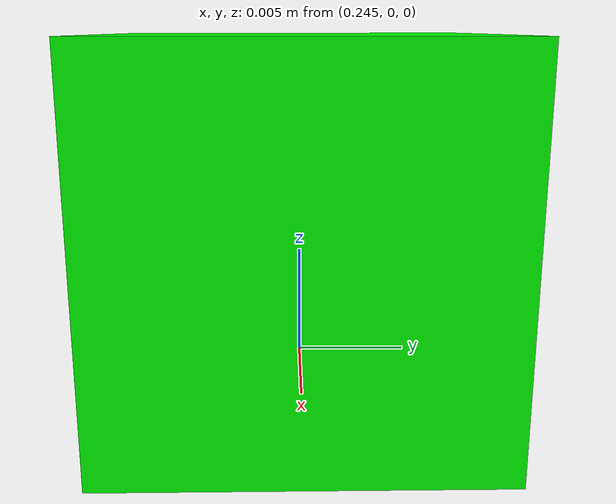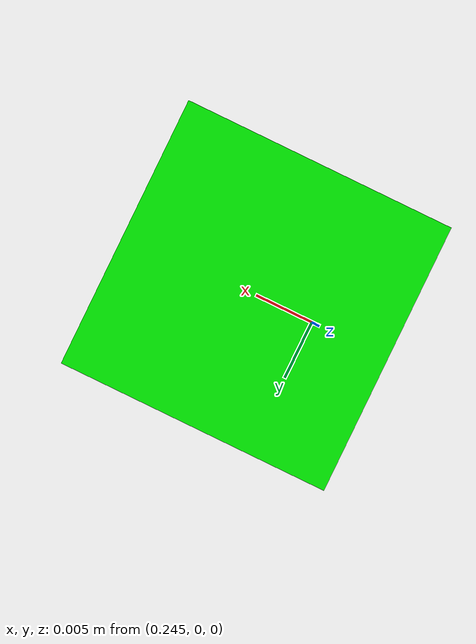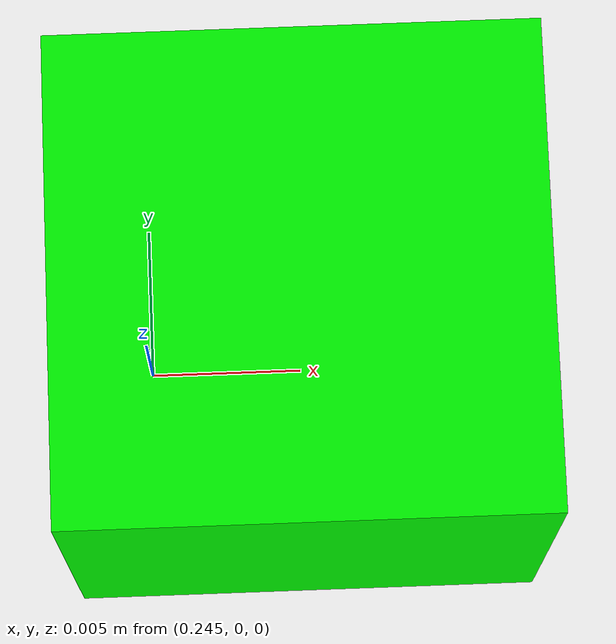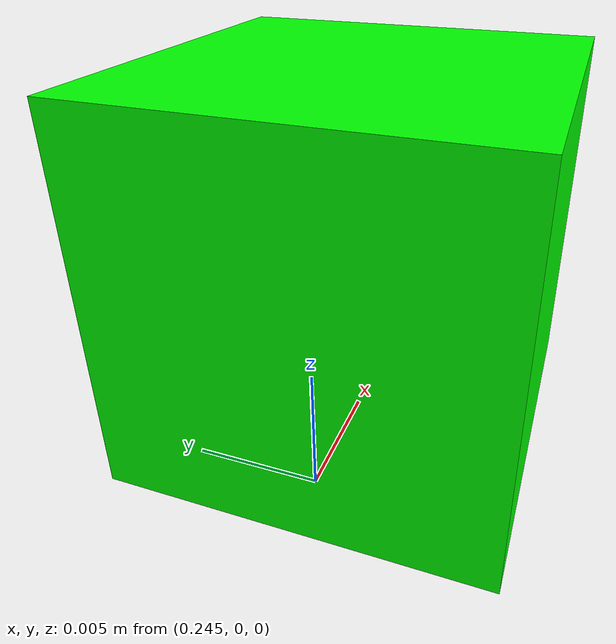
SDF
<?xml version='1.0'?>
<sdf version="1.4">
<model name="green_cube">
  <pose>0.25 0 0.0075 0 0 0</pose>
  <static>false</static>
    <link name="cube">
      <inertial>
        <mass>0.001</mass>
        <inertia> <!-- inertias are tricky to compute -->
          <!-- http://gazebosim.org/tutorials?tut=inertia&cat=build_robot -->
          <ixx>3.75e-8</ixx>       <!-- for a box: ixx = 0.083 * mass * (y*y + z*z) -->
          <ixy>0.0</ixy>         <!-- for a box: ixy = 0 -->
          <ixz>0.0</ixz>         <!-- for a box: ixz = 0 -->
          <iyy>3.75e-8</iyy>       <!-- for a box: iyy = 0.083 * mass * (x*x + z*z) -->
          <iyz>0.0</iyz>         <!-- for a box: iyz = 0 -->
          <izz>3.75e-8</izz>       <!-- for a box: izz = 0.083 * mass * (x*x + y*y) -->
        </inertia>
      </inertial>
      <collision name="box">
        <geometry>
          <box>
            <size>.015 .015 .015</size>
          </box>
        </geometry>
        <surface>
  						<contact>
  							<ode>
  								<soft_cfm>0.2</soft_cfm>
  								<soft_erp>0.2</soft_erp>
  								<kp>1e5</kp>
  								<kd>1.0</kd>
  							</ode>
  						</contact>

  						<friction>
  							<ode>
  								<mu>1</mu>
  								<mu2>1</mu2>
  								<fdir1>0.000000 0.000000 1.000000</fdir1>
  							</ode>
  						</friction>
  						<contact>
  							<ode>
  								<max_vel>0.1</max_vel>
  								<min_depth>0.001</min_depth>
  							</ode>
  						</contact>
            </surface>
      </collision>
      <visual name="green_cube">
        <geometry>
          <box>
            <size>.015 .015 .015</size>
          </box>
        </geometry>
	 <material>
    		<ambient>0 1 0 1</ambient>
    		<diffuse>0 1 0 1</diffuse>
    		<specular>0.1 0.1 0.1 1</specular>
    		<emissive>0 0 0 0</emissive>
  	</material>
      </visual>
    </link>
  </model>
</sdf>
